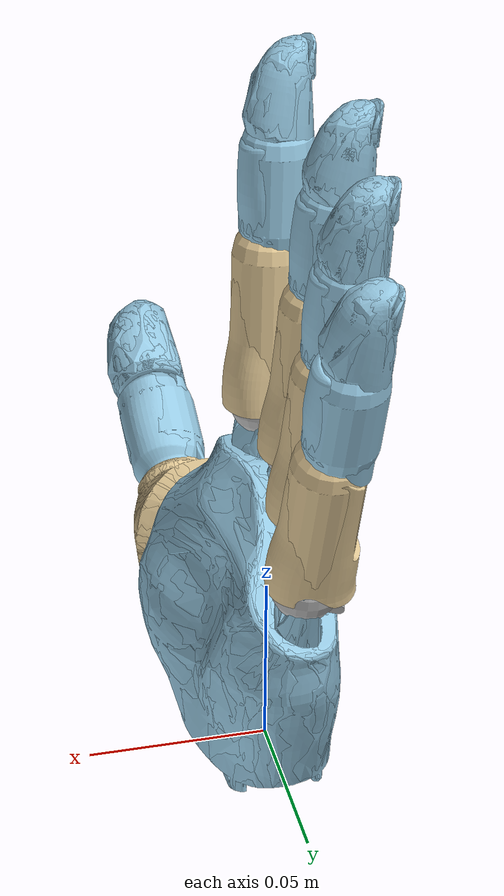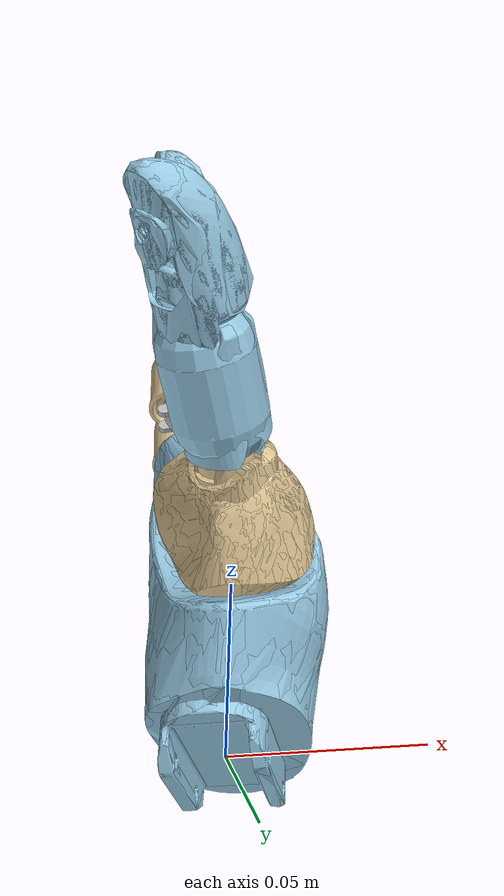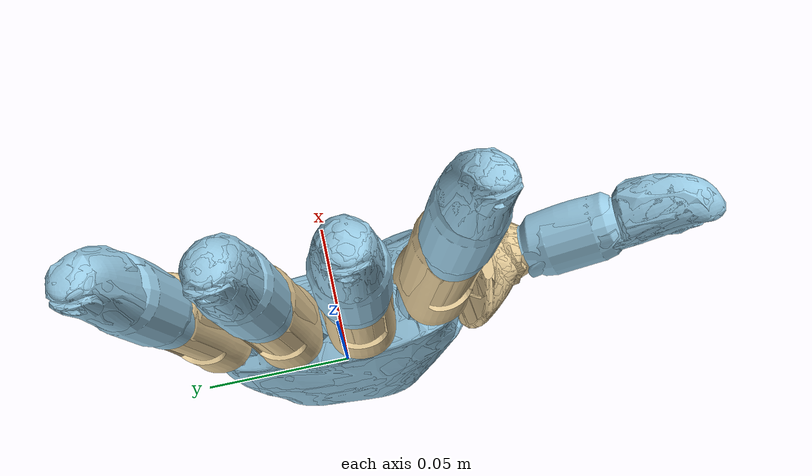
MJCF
<mujoco model="wujihand-left">
  <compiler angle="radian" />

  <option jacobian="sparse" integrator="RK4" timestep="0.002" solver="Newton" iterations="50" tolerance="1e-10" /><default><joint armature="0.0002" damping="0.0" /></default><asset>
    <mesh name="left_palm_link" content_type="model/stl" file="../meshes/left/left_palm_link.STL" />
    <mesh name="left_palm_link_collision" content_type="model/stl" file="../meshes/left/left_palm_link_simplified.STL" />
    <mesh name="left_finger1_link1" content_type="model/stl" file="../meshes/left/left_finger1_link1.STL" />
    <mesh name="left_finger1_link2" content_type="model/stl" file="../meshes/left/left_finger1_link2.STL" />
    <mesh name="left_finger1_link3" content_type="model/stl" file="../meshes/left/left_finger1_link3.STL" />
    <mesh name="left_finger1_link4" content_type="model/stl" file="../meshes/left/left_finger1_link4.STL" />
    <mesh name="left_finger1_link4_simplified" content_type="model/stl" file="../meshes/left/left_finger1_link4_simplified.STL" />
    <mesh name="left_finger1_tip_link" content_type="model/stl" file="../meshes/left/left_finger1_tip_link.STL" />
    <mesh name="left_finger1_link2_softbody" content_type="model/stl" file="../meshes/left/left_finger1_link2_softbody.STL" />
    <mesh name="left_finger1_link2_softbody_simplified" content_type="model/stl" file="../meshes/left/left_finger1_link2_softbody_simplified.STL" />
    <mesh name="left_finger2_link1" content_type="model/stl" file="../meshes/left/left_finger2_link1.STL" />
    <mesh name="left_finger2_link2" content_type="model/stl" file="../meshes/left/left_finger2_link2.STL" />
    <mesh name="left_finger2_link3" content_type="model/stl" file="../meshes/left/left_finger2_link3.STL" />
    <mesh name="left_finger2_link4" content_type="model/stl" file="../meshes/left/left_finger2_link4.STL" />
    <mesh name="left_finger2_link4_simplified" content_type="model/stl" file="../meshes/left/left_finger2_link4_simplified.STL" />
    <mesh name="left_finger2_tip_link" content_type="model/stl" file="../meshes/left/left_finger2_tip_link.STL" />
    <mesh name="left_finger3_link1" content_type="model/stl" file="../meshes/left/left_finger3_link1.STL" />
    <mesh name="left_finger3_link2" content_type="model/stl" file="../meshes/left/left_finger3_link2.STL" />
    <mesh name="left_finger3_link3" content_type="model/stl" file="../meshes/left/left_finger3_link3.STL" />
    <mesh name="left_finger3_link4" content_type="model/stl" file="../meshes/left/left_finger3_link4.STL" />
    <mesh name="left_finger3_link4_simplified" content_type="model/stl" file="../meshes/left/left_finger3_link4_simplified.STL" />
    <mesh name="left_finger3_tip_link" content_type="model/stl" file="../meshes/left/left_finger3_tip_link.STL" />
    <mesh name="left_finger4_link1" content_type="model/stl" file="../meshes/left/left_finger4_link1.STL" />
    <mesh name="left_finger4_link2" content_type="model/stl" file="../meshes/left/left_finger4_link2.STL" />
    <mesh name="left_finger4_link3" content_type="model/stl" file="../meshes/left/left_finger4_link3.STL" />
    <mesh name="left_finger4_link4" content_type="model/stl" file="../meshes/left/left_finger4_link4.STL" />
    <mesh name="left_finger4_link4_simplified" content_type="model/stl" file="../meshes/left/left_finger4_link4_simplified.STL" />
    <mesh name="left_finger4_tip_link" content_type="model/stl" file="../meshes/left/left_finger4_tip_link.STL" />
    <mesh name="left_finger5_link1" content_type="model/stl" file="../meshes/left/left_finger5_link1.STL" />
    <mesh name="left_finger5_link2" content_type="model/stl" file="../meshes/left/left_finger5_link2.STL" />
    <mesh name="left_finger5_link3" content_type="model/stl" file="../meshes/left/left_finger5_link3.STL" />
    <mesh name="left_finger5_link4" content_type="model/stl" file="../meshes/left/left_finger5_link4.STL" />
    <mesh name="left_finger5_link4_simplified" content_type="model/stl" file="../meshes/left/left_finger5_link4_simplified.STL" />
    <mesh name="left_finger5_tip_link" content_type="model/stl" file="../meshes/left/left_finger5_tip_link.STL" />
  </asset>

  <worldbody>
    <body name="left_palm_link"><inertial pos="0.001524452695 -0.002642346221 0.03766991642" mass="0.16914" quat="-0.01772809 0.04274722 0.09308295 -0.99458230" diaginertia="0.000140677446 9.5889647500e-05 5.8132906100e-05" /><geom type="mesh" contype="0" conaffinity="0" group="1" density="0" rgba="0.6 0.8 0.9 1" mesh="left_palm_link" />
    <geom type="mesh" rgba="0.6 0.8 0.9 1" mesh="left_palm_link_collision" contype="1" conaffinity="1" />
    <body name="left_finger1_link1" pos="0.00852444 -0.0205754 0.0287119" quat="0.682211 0.617678 0.0805082 0.382859">
      <inertial pos="-0.00246155 0.00144069 0.00778554" quat="0.904243 0.21652 0.0443878 -0.365368" mass="0.0075" diaginertia="3.37599e-07 3.01198e-07 2.11203e-07" />
      <joint name="left_finger1_joint1" pos="0 0 0" axis="0 1 0" range="0.0475 1.6033" actuatorfrcrange="-0.4452 0.4452" armature="0.0005" />
      <geom type="mesh" contype="0" conaffinity="0" group="1" density="0" rgba="0.7 0.7 0.7 1" mesh="left_finger1_link1" />
      <geom type="capsule" size="0.00615198 0.00362986" pos="0 0 0.00827912" rgba="0.7 0.7 0.7 1" contype="0" conaffinity="0" />
      <body name="left_finger1_link2" pos="-0.0047549 0.00601914 0.0141321" quat="0.616957 0.0855876 -0.29085 -0.726254">
        <inertial pos="0.00136084 -8.51198e-05 0.0150055" quat="0.926192 0.00548447 -0.048696 -0.373854" mass="0.0333513" diaginertia="4.1738e-06 4.1045e-06 2.19539e-06" />
        <joint name="left_finger1_joint2" pos="0 0 0" axis="0 -1 0" range="-0.1387 0.9324" actuatorfrcrange="-0.4259 0.4259" armature="0.0005" />
        <geom type="mesh" contype="0" conaffinity="0" group="1" density="0" rgba="0.9 0.8 0.6 1" mesh="left_finger1_link2" />
        <geom type="capsule" size="0.00661572 0.0135192" pos="0 0 0.0170004" rgba="0.9 0.8 0.6 1" contype="2" conaffinity="2" />
        <geom type="mesh" contype="0" conaffinity="0" group="1" density="0" rgba="0.9 0.8 0.6 1" mesh="left_finger1_link2_softbody" />
        <geom type="mesh" rgba="0.9 0.8 0.6 1" mesh="left_finger1_link2_softbody_simplified" contype="2" conaffinity="2" />
        <body name="left_finger1_link3" pos="0.000188722 0.000991601 0.0346636" quat="0.577836 -0.0212382 -0.0150036 0.815739">
          <inertial pos="0.000774544 1.11939e-05 0.01277" quat="0.999951 0 0.00989566 0" mass="0.0165" diaginertia="1.4604e-06 1.42e-06 4.49604e-07" />
          <joint name="left_finger1_joint3" pos="0 0 0" axis="0 1 0" range="-0.4642 1.5623" actuatorfrcrange="-0.1888 0.1888" />
          <geom type="mesh" contype="0" conaffinity="0" group="1" density="0" rgba="0.6 0.8 0.9 1" mesh="left_finger1_link3" />
          <geom type="capsule" size="0.0110676 0.0081727" pos="0 0 0.0140091" rgba="0.6 0.8 0.9 1" contype="1" conaffinity="1" />
          <body name="left_finger1_link4" pos="0 -0.0002 0.0295">
            <inertial pos="2.97895e-05 0.000153669 0.0148862" quat="0.705242 -0.0513145 -0.0513145 0.705242" mass="0.0206" diaginertia="1.78779e-06 1.75041e-06 7.7738e-07" />
            <joint name="left_finger1_joint4" pos="0 0 0" axis="0 1 0" range="-0.4699 1.5568" actuatorfrcrange="-0.1468 0.1468" />
            <geom type="mesh" contype="0" conaffinity="0" group="1" density="0" rgba="0.6 0.8 0.9 1" mesh="left_finger1_link4" />
            <geom type="mesh" rgba="0.6 0.8 0.9 1" mesh="left_finger1_link4_simplified" contype="1" conaffinity="1" />
            <geom pos="0 0 0.0328135" type="mesh" contype="0" conaffinity="0" group="1" density="0" rgba="0.6 0.8 0.9 1" mesh="left_finger1_tip_link" />

          </body>
        </body>
      </body>
    </body>
    <body name="left_finger2_link1" pos="-0.00587009 -0.0294339 0.0919165" quat="0.991689 0.0588292 -0.0292755 0.110616">
      <inertial pos="-0.00132905 4.18014e-08 0.000320068" quat="0.92388 0 0.382683 0" mass="0.0032" diaginertia="1.1e-07 7e-08 5e-08" />
      <joint name="left_finger2_joint1" pos="0 0 0" axis="0 1 0" range="-0.1585 1.5604" actuatorfrcrange="-0.6188 0.6188" armature="0.0005" />
      <geom type="mesh" contype="0" conaffinity="0" group="1" density="0" rgba="0.7 0.7 0.7 1" mesh="left_finger2_link1" />
      <geom type="sphere" size="0.00936231" pos="0 0 -0.000714564" rgba="0.7 0.7 0.7 1" contype="0" conaffinity="0" />
      <body name="left_finger2_link2" pos="0.0022 0 0.00400001" quat="0.707107 0 0 0.707107">
        <inertial pos="-1.78565e-06 0.00370948 0.0184837" quat="0.70703 0.0104245 0.0104245 0.70703" mass="0.033" diaginertia="6.34e-06 6.31472e-06 8.85281e-07" />
        <joint name="left_finger2_joint2" pos="0 0 0" axis="0 1 0" range="-0.37 0.37" actuatorfrcrange="-0.1822 0.1822" />
        <geom type="mesh" contype="0" conaffinity="0" group="1" density="0" rgba="0.9 0.8 0.6 1" mesh="left_finger2_link2" />
        <geom type="capsule" size="0.010221 0.0169968" pos="0 0.003 0.021631" rgba="0.9 0.8 0.6 1" contype="2" conaffinity="2" />
        <body name="left_finger2_link3" pos="0 0.00475 0.0436177" quat="0.707202 0 0 -0.707012">
          <inertial pos="0.000341914 -1.40911e-05 0.0134812" quat="0.999892 0 -0.0146884 0" mass="0.0165" diaginertia="1.47088e-06 1.44e-06 4.49118e-07" />
          <joint name="left_finger2_joint3" pos="0 0 0" axis="0 1 0" range="-0.4777 1.5485" actuatorfrcrange="-0.2251 0.2251" />
          <geom type="mesh" contype="0" conaffinity="0" group="1" density="0" rgba="0.6 0.8 0.9 1" mesh="left_finger2_link3" />
          <geom type="capsule" size="0.010221 0.0108889" pos="0 0 0.0136213" rgba="0.6 0.8 0.9 1" contype="1" conaffinity="1" />
          <body name="left_finger2_link4" pos="0 0 0.0295">
            <inertial pos="-0.000815133 -1.35285e-05 0.0107847" quat="0.995635 -0.00653716 -0.0926302 -0.00932836" mass="0.01718" diaginertia="1.1763e-06 1.07011e-06 4.03591e-07" />
            <joint name="left_finger2_joint4" pos="0 0 0" axis="0 1 0" range="-0.4683 1.5753" actuatorfrcrange="-0.217 0.217" />
            <geom type="mesh" contype="0" conaffinity="0" group="1" density="0" rgba="0.6 0.8 0.9 1" mesh="left_finger2_link4" />
            <geom type="mesh" rgba="0.6 0.8 0.9 1" mesh="left_finger2_link4_simplified" contype="1" conaffinity="1" />
            <geom pos="0 0 0.024" quat="1 0 0 0" type="mesh" contype="0" conaffinity="0" group="1" density="0" rgba="0.6 0.8 0.9 1" mesh="left_finger2_tip_link" />

          </body>
        </body>
      </body>
    </body>
    <body name="left_finger3_link1" pos="-0.0104597 -0.00746146 0.0895435" quat="0.999048 1.26889e-05 -0.0436194 -0.000290548">
      <inertial pos="-0.0013291 3.85118e-08 0.000319976" quat="0.92388 0 0.382683 0" mass="0.0032" diaginertia="1.1e-07 7e-08 5e-08" />
      <joint name="left_finger3_joint1" pos="0 0 0" axis="0 1 0" range="-0.1644 1.5516" actuatorfrcrange="-0.6494 0.6494" armature="0.0005" />
      <geom type="mesh" contype="0" conaffinity="0" group="1" density="0" rgba="0.7 0.7 0.7 1" mesh="left_finger3_link1" />
      <geom type="sphere" size="0.00939653" pos="0 0 -0.000715513" rgba="0.7 0.7 0.7 1" contype="0" conaffinity="0" />
      <body name="left_finger3_link2" pos="0.0022 0 0.00400001" quat="0.707107 0 0 0.707107">
        <inertial pos="-1.82891e-06 0.00370965 0.0184837" quat="0.70703 0.0104245 0.0104245 0.70703" mass="0.033" diaginertia="6.34e-06 6.31472e-06 8.85281e-07" />
        <joint name="left_finger3_joint2" pos="0 0 0" axis="0 1 0" range="-0.37 0.37" actuatorfrcrange="-0.1827 0.1827" />
        <geom type="mesh" contype="0" conaffinity="0" group="1" density="0" rgba="0.9 0.8 0.6 1" mesh="left_finger3_link2" />
        <geom type="capsule" size="0.010184 0.0170338" pos="0 0.003 0.021631" rgba="0.9 0.8 0.6 1" contype="2" conaffinity="2" />
        <body name="left_finger3_link3" pos="0 0.00475 0.0436177" quat="0.707202 0 0 -0.707012">
          <inertial pos="0.000333742 -1.05568e-05 0.0134866" quat="0.999892 0 -0.0146884 0" mass="0.0165" diaginertia="1.47088e-06 1.44e-06 4.49118e-07" />
          <joint name="left_finger3_joint3" pos="0 0 0" axis="0 1 0" range="-0.4739 1.5512" actuatorfrcrange="-0.2078 0.2078" />
          <geom type="mesh" contype="0" conaffinity="0" group="1" density="0" rgba="0.6 0.8 0.9 1" mesh="left_finger3_link3" />
          <geom type="capsule" size="0.010184 0.0109259" pos="0 0 0.0136212" rgba="0.6 0.8 0.9 1" contype="1" conaffinity="1" />
          <body name="left_finger3_link4" pos="0 0 0.0295">
            <inertial pos="-0.000815615 -1.34653e-05 0.0107846" quat="0.995635 -0.00653716 -0.0926302 -0.00932836" mass="0.01718" diaginertia="1.1763e-06 1.07011e-06 4.03591e-07" />
            <joint name="left_finger3_joint4" pos="0 0 0" axis="0 1 0" range="-0.4684 1.5745" actuatorfrcrange="-0.2018 0.2018" />
            <geom type="mesh" contype="0" conaffinity="0" group="1" density="0" rgba="0.6 0.8 0.9 1" mesh="left_finger3_link4" />
            <geom type="mesh" rgba="0.6 0.8 0.9 1" mesh="left_finger3_link4_simplified" contype="1" conaffinity="1" />
            <geom pos="0 0 0.024" quat="1 0 0 0" type="mesh" contype="0" conaffinity="0" group="1" density="0" rgba="0.6 0.8 0.9 1" mesh="left_finger3_tip_link" />

          </body>
        </body>
      </body>
    </body>
    <body name="left_finger4_link1" pos="-0.00766486 0.0137122 0.0844287" quat="0.997789 -0.0461017 -0.0405881 -0.0254">
      <inertial pos="-0.00132911 4.56181e-08 0.000319941" quat="0.92388 0 0.382683 0" mass="0.0032" diaginertia="1.1e-07 7e-08 5e-08" />
      <joint name="left_finger4_joint1" pos="0 0 0" axis="0 1 0" range="-0.1554 1.5585" actuatorfrcrange="-0.6389 0.6389" armature="0.0005" />
      <geom type="mesh" contype="0" conaffinity="0" group="1" density="0" rgba="0.7 0.7 0.7 1" mesh="left_finger4_link1" />
      <geom type="sphere" size="0.00938587" pos="0 0 -0.000693929" rgba="0.7 0.7 0.7 1" contype="0" conaffinity="0" />
      <body name="left_finger4_link2" pos="0.0022 0 0.00400001" quat="0.707107 0 0 0.707107">
        <inertial pos="-1.82336e-06 0.00371493 0.0185138" quat="0.70703 0.0104245 0.0104245 0.70703" mass="0.033" diaginertia="6.34e-06 6.31472e-06 8.85281e-07" />
        <joint name="left_finger4_joint2" pos="0 0 0" axis="0 1 0" range="-0.37 0.37" actuatorfrcrange="-0.1832 0.1832" />
        <geom type="mesh" contype="0" conaffinity="0" group="1" density="0" rgba="0.9 0.8 0.6 1" mesh="left_finger4_link2" />
        <geom type="capsule" size="0.0101786 0.0170048" pos="0 0.003 0.021669" rgba="0.9 0.8 0.6 1" contype="2" conaffinity="2" />
        <body name="left_finger4_link3" pos="0 0.00475 0.0436177" quat="0.707202 0 0 -0.707012">
          <inertial pos="0.00031892 -1.03297e-05 0.0135407" quat="0.999892 0 -0.0146884 0" mass="0.0165" diaginertia="1.47088e-06 1.44e-06 4.49118e-07" />
          <joint name="left_finger4_joint3" pos="0 0 0" axis="0 1 0" range="-0.4765 1.5487" actuatorfrcrange="-0.2249 0.2249" />
          <geom type="mesh" contype="0" conaffinity="0" group="1" density="0" rgba="0.6 0.8 0.9 1" mesh="left_finger4_link3" />
          <geom type="capsule" size="0.0101786 0.0108995" pos="0 0 0.0136532" rgba="0.6 0.8 0.9 1" contype="1" conaffinity="1" />
          <body name="left_finger4_link4" pos="0 0 0.0295">
            <inertial pos="-0.000864592 -1.02217e-05 0.0108394" quat="0.995635 -0.00653716 -0.0926302 -0.00932836" mass="0.01718" diaginertia="1.1763e-06 1.07011e-06 4.03591e-07" />
            <joint name="left_finger4_joint4" pos="0 0 0" axis="0 1 0" range="-0.4777 1.5634" actuatorfrcrange="-0.2044 0.2044" />
            <geom type="mesh" contype="0" conaffinity="0" group="1" density="0" rgba="0.6 0.8 0.9 1" mesh="left_finger4_link4" />
            <geom type="mesh" rgba="0.6 0.8 0.9 1" mesh="left_finger4_link4_simplified" contype="1" conaffinity="1" />
            <geom pos="0 0 0.024" quat="1 0 0 0" type="mesh" contype="0" conaffinity="0" group="1" density="0" rgba="0.6 0.8 0.9 1" mesh="left_finger4_tip_link" />

          </body>
        </body>
      </body>
    </body>
    <body name="left_finger5_link1" pos="-0.00226865 0.0340011 0.0742813" quat="0.990869 -0.0993173 -0.0383255 -0.0827362">
      <inertial pos="-0.00132912 3.31411e-08 0.000319867" quat="0.92388 0 0.382683 0" mass="0.0032" diaginertia="1.1e-07 7e-08 5e-08" />
      <joint name="left_finger5_joint1" pos="0 0 0" axis="0 1 0" range="-0.1626 1.5585" actuatorfrcrange="-0.6441 0.6441" armature="0.0005" />
      <geom type="mesh" contype="0" conaffinity="0" group="1" density="0" rgba="0.7 0.7 0.7 1" mesh="left_finger5_link1" />
      <geom type="sphere" size="0.00939158" pos="0 0 -0.000718182" rgba="0.7 0.7 0.7 1" contype="0" conaffinity="0" />
      <body name="left_finger5_link2" pos="0.0022 0 0.00400001" quat="0.707107 0 0 0.707107">
        <inertial pos="-1.8211e-06 0.00371684 0.0193334" quat="0.70703 0.0104245 0.0104245 0.70703" mass="0.033" diaginertia="6.34e-06 6.31472e-06 8.85281e-07" />
        <joint name="left_finger5_joint2" pos="0 0 0" axis="0 1 0" range="-0.37 0.37" actuatorfrcrange="-0.1798 0.1798" />
        <geom type="mesh" contype="0" conaffinity="0" group="1" density="0" rgba="0.9 0.8 0.6 1" mesh="left_finger5_link2" />
        <geom type="capsule" size="0.0101586 0.016917" pos="0 0.003 0.0217777" rgba="0.9 0.8 0.6 1" contype="2" conaffinity="2" />
        <body name="left_finger5_link3" pos="0 0.00475 0.0436177" quat="0.707202 0 0 -0.707012">
          <inertial pos="0.000353514 -5.08998e-06 0.0139268" quat="0.999892 0 -0.0146884 0" mass="0.0165" diaginertia="1.47088e-06 1.44e-06 4.49118e-07" />
          <joint name="left_finger5_joint3" pos="0 0 0" axis="0 1 0" range="-0.4768 1.549" actuatorfrcrange="-0.2384 0.2384" />
          <geom type="mesh" contype="0" conaffinity="0" group="1" density="0" rgba="0.6 0.8 0.9 1" mesh="left_finger5_link3" />
          <geom type="capsule" size="0.0101586 0.00992035" pos="0 0 0.0146523" rgba="0.6 0.8 0.9 1" contype="1" conaffinity="1" />
          <body name="left_finger5_link4" pos="0 0 0.0295">
            <inertial pos="-0.000906048 1.84282e-05 0.0122759" quat="0.995635 -0.00653716 -0.0926302 -0.00932836" mass="0.01718" diaginertia="1.1763e-06 1.07011e-06 4.03591e-07" />
            <joint name="left_finger5_joint4" pos="0 0 0" axis="0 1 0" range="-0.4683 1.5735" actuatorfrcrange="-0.1866 0.1866" />
            <geom type="mesh" contype="0" conaffinity="0" group="1" density="0" rgba="0.6 0.8 0.9 1" mesh="left_finger5_link4" />
            <geom type="mesh" rgba="0.6 0.8 0.9 1" mesh="left_finger5_link4_simplified" contype="1" conaffinity="1" />
            <geom pos="0 0 0.026" quat="1 0 0 0" type="mesh" contype="0" conaffinity="0" group="1" density="0" rgba="0.6 0.8 0.9 1" mesh="left_finger5_tip_link" />

          </body>
        </body>
      </body>
    </body>
  </body></worldbody>
  <actuator>
    <position name="left_finger1_joint1_actuator" joint="left_finger1_joint1" kp="0.40844710645048043" kv="0.020882010257063675" ctrlrange="0.0475 1.6033" forcerange="-0.4452 0.4452" />
    <position name="left_finger1_joint2_actuator" joint="left_finger1_joint2" kp="0.6858601063643346" kv="0.030610939996373314" ctrlrange="-0.1387 0.9324" forcerange="-0.4259 0.4259" />
    <position name="left_finger1_joint3_actuator" joint="left_finger1_joint3" kp="0.2391112196099482" kv="0.010181475050560962" ctrlrange="-0.4642 1.5623" forcerange="-0.1888 0.1888" />
    <position name="left_finger1_joint4_actuator" joint="left_finger1_joint4" kp="0.20736128319711747" kv="0.00909698844675045" ctrlrange="-0.4699 1.5568" forcerange="-0.1468 0.1468" />
    <position name="left_finger2_joint1_actuator" joint="left_finger2_joint1" kp="0.37352218155860073" kv="0.01882274330029718" ctrlrange="-0.1585 1.5604" forcerange="-0.6188 0.6188" />
    <position name="left_finger2_joint2_actuator" joint="left_finger2_joint2" kp="0.45592448909027794" kv="0.019798167597016643" ctrlrange="-0.37 0.37" forcerange="-0.1822 0.1822" />
    <position name="left_finger2_joint3_actuator" joint="left_finger2_joint3" kp="0.24368366649522863" kv="0.010477031953162727" ctrlrange="-0.4777 1.5485" forcerange="-0.2251 0.2251" />
    <position name="left_finger2_joint4_actuator" joint="left_finger2_joint4" kp="0.18026971340925335" kv="0.008240212147903584" ctrlrange="-0.4683 1.5753" forcerange="-0.217 0.217" />
    <position name="left_finger3_joint1_actuator" joint="left_finger3_joint1" kp="0.3687093483646485" kv="0.01848622487024593" ctrlrange="-0.1644 1.5516" forcerange="-0.6494 0.6494" />
    <position name="left_finger3_joint2_actuator" joint="left_finger3_joint2" kp="0.4164253443634641" kv="0.018032947229953678" ctrlrange="-0.37 0.37" forcerange="-0.1827 0.1827" />
    <position name="left_finger3_joint3_actuator" joint="left_finger3_joint3" kp="0.22218607502059182" kv="0.009592200014076666" ctrlrange="-0.4739 1.5512" forcerange="-0.2078 0.2078" />
    <position name="left_finger3_joint4_actuator" joint="left_finger3_joint4" kp="0.19427606072023446" kv="0.009152994605972402" ctrlrange="-0.4684 1.5745" forcerange="-0.2018 0.2018" />
    <position name="left_finger4_joint1_actuator" joint="left_finger4_joint1" kp="0.35718151495111794" kv="0.018376606800780005" ctrlrange="-0.1554 1.5585" forcerange="-0.6389 0.6389" />
    <position name="left_finger4_joint2_actuator" joint="left_finger4_joint2" kp="0.42977315313086895" kv="0.01867700966212433" ctrlrange="-0.37 0.37" forcerange="-0.1832 0.1832" />
    <position name="left_finger4_joint3_actuator" joint="left_finger4_joint3" kp="0.24930151196247122" kv="0.01059512121009555" ctrlrange="-0.4765 1.5487" forcerange="-0.2249 0.2249" />
    <position name="left_finger4_joint4_actuator" joint="left_finger4_joint4" kp="0.2285032688178066" kv="0.009917602877441107" ctrlrange="-0.4777 1.5634" forcerange="-0.2044 0.2044" />
    <position name="left_finger5_joint1_actuator" joint="left_finger5_joint1" kp="0.3655325975433942" kv="0.018616960278988272" ctrlrange="-0.1626 1.5585" forcerange="-0.6441 0.6441" />
    <position name="left_finger5_joint2_actuator" joint="left_finger5_joint2" kp="0.41393113081120425" kv="0.018732177029667153" ctrlrange="-0.37 0.37" forcerange="-0.1798 0.1798" />
    <position name="left_finger5_joint3_actuator" joint="left_finger5_joint3" kp="0.22729367621965954" kv="0.00951005441616486" ctrlrange="-0.4768 1.549" forcerange="-0.2384 0.2384" />
    <position name="left_finger5_joint4_actuator" joint="left_finger5_joint4" kp="0.1964723550341816" kv="0.009017295241756363" ctrlrange="-0.4683 1.5735" forcerange="-0.1866 0.1866" />
  </actuator>
</mujoco>
